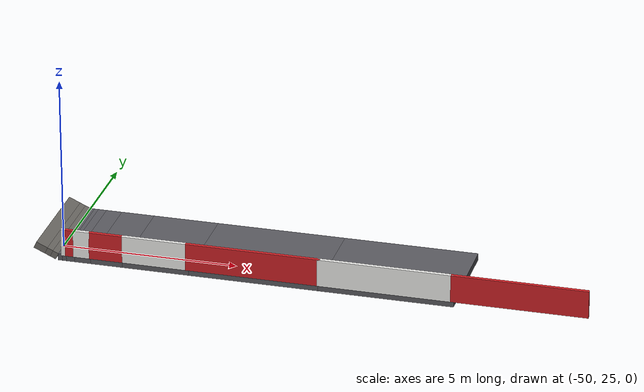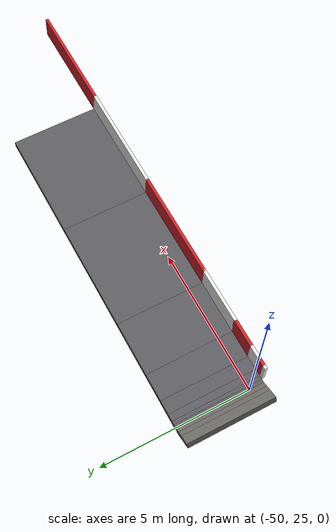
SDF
<sdf version="1.10">
 <world name="ika_parkur">
  <model name="parkur_road">
   <static>true</static>
   <link name="road_0151">
    <pose>-40.625 26 -0.1 0 0 3.141593</pose>
    <collision name="road_0151_col">
     <geometry><box><size>3.825 3 0.2</size></box></geometry>
     <surface>
      <friction><ode><mu>1</mu><mu2>1</mu2></ode></friction>
      <contact><ode><kp>1000000</kp><kd>1</kd></ode></contact>
     </surface>
    </collision>
    <visual name="road_0151_vis">
     <geometry><box><size>3.825 3 0.2</size></box></geometry>
     <material>
      <ambient>0.35 0.35 0.37 1</ambient>
      <diffuse>0.35 0.35 0.37 1</diffuse>
      <specular>0.1 0.1 0.1 1</specular>
     </material>
    </visual>
   </link>
   <link name="road_0152">
    <pose>-44.375 26 -0.1 0 0 3.141593</pose>
    <collision name="road_0152_col">
     <geometry><box><size>3.825 3 0.2</size></box></geometry>
     <surface>
      <friction><ode><mu>1</mu><mu2>1</mu2></ode></friction>
      <contact><ode><kp>1000000</kp><kd>1</kd></ode></contact>
     </surface>
    </collision>
    <visual name="road_0152_vis">
     <geometry><box><size>3.825 3 0.2</size></box></geometry>
     <material>
      <ambient>0.35 0.35 0.37 1</ambient>
      <diffuse>0.35 0.35 0.37 1</diffuse>
      <specular>0.1 0.1 0.1 1</specular>
     </material>
    </visual>
   </link>
   <link name="road_0153">
    <pose>-47.1875 26 -0.1 0 0 3.141593</pose>
    <collision name="road_0153_col">
     <geometry><box><size>1.9125 3 0.2</size></box></geometry>
     <surface>
      <friction><ode><mu>1</mu><mu2>1</mu2></ode></friction>
      <contact><ode><kp>1000000</kp><kd>1</kd></ode></contact>
     </surface>
    </collision>
    <visual name="road_0153_vis">
     <geometry><box><size>1.9125 3 0.2</size></box></geometry>
     <material>
      <ambient>0.35 0.35 0.37 1</ambient>
      <diffuse>0.35 0.35 0.37 1</diffuse>
      <specular>0.1 0.1 0.1 1</specular>
     </material>
    </visual>
   </link>
   <link name="road_0154">
    <pose>-48.59375 26 -0.1 0 0 3.141593</pose>
    <collision name="road_0154_col">
     <geometry><box><size>0.95625 3 0.2</size></box></geometry>
     <surface>
      <friction><ode><mu>1</mu><mu2>1</mu2></ode></friction>
      <contact><ode><kp>1000000</kp><kd>1</kd></ode></contact>
     </surface>
    </collision>
    <visual name="road_0154_vis">
     <geometry><box><size>0.95625 3 0.2</size></box></geometry>
     <material>
      <ambient>0.35 0.35 0.37 1</ambient>
      <diffuse>0.35 0.35 0.37 1</diffuse>
      <specular>0.1 0.1 0.1 1</specular>
     </material>
    </visual>
   </link>
   <link name="road_0155">
    <pose>-49.296875 26 -0.1 0 0 3.141593</pose>
    <collision name="road_0155_col">
     <geometry><box><size>0.478125 3 0.2</size></box></geometry>
     <surface>
      <friction><ode><mu>1</mu><mu2>1</mu2></ode></friction>
      <contact><ode><kp>1000000</kp><kd>1</kd></ode></contact>
     </surface>
    </collision>
    <visual name="road_0155_vis">
     <geometry><box><size>0.478125 3 0.2</size></box></geometry>
     <material>
      <ambient>0.35 0.35 0.37 1</ambient>
      <diffuse>0.35 0.35 0.37 1</diffuse>
      <specular>0.1 0.1 0.1 1</specular>
     </material>
    </visual>
   </link>
   <link name="road_0156">
    <pose>-49.648438 26 -0.1 0 0 3.141593</pose>
    <collision name="road_0156_col">
     <geometry><box><size>0.239063 3 0.2</size></box></geometry>
     <surface>
      <friction><ode><mu>1</mu><mu2>1</mu2></ode></friction>
      <contact><ode><kp>1000000</kp><kd>1</kd></ode></contact>
     </surface>
    </collision>
    <visual name="road_0156_vis">
     <geometry><box><size>0.239063 3 0.2</size></box></geometry>
     <material>
      <ambient>0.35 0.35 0.37 1</ambient>
      <diffuse>0.35 0.35 0.37 1</diffuse>
      <specular>0.1 0.1 0.1 1</specular>
     </material>
    </visual>
   </link>
   <link name="road_0157">
    <pose>-49.824219 26 -0.1 0 0 3.141593</pose>
    <collision name="road_0157_col">
     <geometry><box><size>0.119531 3 0.2</size></box></geometry>
     <surface>
      <friction><ode><mu>1</mu><mu2>1</mu2></ode></friction>
      <contact><ode><kp>1000000</kp><kd>1</kd></ode></contact>
     </surface>
    </collision>
    <visual name="road_0157_vis">
     <geometry><box><size>0.119531 3 0.2</size></box></geometry>
     <material>
      <ambient>0.35 0.35 0.37 1</ambient>
      <diffuse>0.35 0.35 0.37 1</diffuse>
      <specular>0.1 0.1 0.1 1</specular>
     </material>
    </visual>
   </link>
   <link name="road_0158">
    <pose>-49.941406 26 -0.1 0 0 3.141593</pose>
    <collision name="road_0158_col">
     <geometry><box><size>0.119531 3 0.2</size></box></geometry>
     <surface>
      <friction><ode><mu>1</mu><mu2>1</mu2></ode></friction>
      <contact><ode><kp>1000000</kp><kd>1</kd></ode></contact>
     </surface>
    </collision>
    <visual name="road_0158_vis">
     <geometry><box><size>0.119531 3 0.2</size></box></geometry>
     <material>
      <ambient>0.35 0.35 0.37 1</ambient>
      <diffuse>0.35 0.35 0.37 1</diffuse>
      <specular>0.1 0.1 0.1 1</specular>
     </material>
    </visual>
   </link>
   <link name="road_0159">
    <pose>-50.119161 26 -0.056036 0 -0.422854 3.141593</pose>
    <collision name="road_0159_col">
     <geometry><box><size>0.174768 3 0.2</size></box></geometry>
     <surface>
      <friction><ode><mu>1</mu><mu2>1</mu2></ode></friction>
      <contact><ode><kp>1000000</kp><kd>1</kd></ode></contact>
     </surface>
    </collision>
    <visual name="road_0159_vis">
     <geometry><box><size>0.174768 3 0.2</size></box></geometry>
     <material>
      <ambient>0.42 0.41 0.39 1</ambient>
      <diffuse>0.42 0.41 0.39 1</diffuse>
      <specular>0.1 0.1 0.1 1</specular>
     </material>
    </visual>
   </link>
   <link name="road_0160">
    <pose>-50.275411 26 0.014277 0 -0.422854 3.141593</pose>
    <collision name="road_0160_col">
     <geometry><box><size>0.174768 3 0.2</size></box></geometry>
     <surface>
      <friction><ode><mu>1</mu><mu2>1</mu2></ode></friction>
      <contact><ode><kp>1000000</kp><kd>1</kd></ode></contact>
     </surface>
    </collision>
    <visual name="road_0160_vis">
     <geometry><box><size>0.174768 3 0.2</size></box></geometry>
     <material>
      <ambient>0.42 0.41 0.39 1</ambient>
      <diffuse>0.42 0.41 0.39 1</diffuse>
      <specular>0.1 0.1 0.1 1</specular>
     </material>
    </visual>
   </link>
   <link name="road_0161">
    <pose>-50.509786 26 0.119745 0 -0.422854 3.141593</pose>
    <collision name="road_0161_col">
     <geometry><box><size>0.349537 3 0.2</size></box></geometry>
     <surface>
      <friction><ode><mu>1</mu><mu2>1</mu2></ode></friction>
      <contact><ode><kp>1000000</kp><kd>1</kd></ode></contact>
     </surface>
    </collision>
    <visual name="road_0161_vis">
     <geometry><box><size>0.349537 3 0.2</size></box></geometry>
     <material>
      <ambient>0.42 0.41 0.39 1</ambient>
      <diffuse>0.42 0.41 0.39 1</diffuse>
      <specular>0.1 0.1 0.1 1</specular>
     </material>
    </visual>
   </link>
  </model>
  <model name="parkur_barriers">
   <static>true</static>
   <link name="barrier_l_0150">
    <pose>-36.875 24.45 0.4 0 0 3.141593</pose>
    <collision name="barrier_l_0150_col">
     <geometry><box><size>3.825 0.1 0.8</size></box></geometry>
     <surface>
      <friction><ode><mu>0.6</mu><mu2>0.6</mu2></ode></friction>
      <contact><ode><kp>1000000</kp><kd>1</kd></ode></contact>
     </surface>
    </collision>
    <visual name="barrier_l_0150_vis">
     <geometry><box><size>3.825 0.1 0.8</size></box></geometry>
     <material>
      <ambient>0.81 0.13 0.15 1</ambient>
      <diffuse>0.81 0.13 0.15 1</diffuse>
      <specular>0.1 0.1 0.1 1</specular>
     </material>
    </visual>
   </link>
   <link name="barrier_l_0151">
    <pose>-40.625 24.45 0.4 0 0 3.141593</pose>
    <collision name="barrier_l_0151_col">
     <geometry><box><size>3.825 0.1 0.8</size></box></geometry>
     <surface>
      <friction><ode><mu>0.6</mu><mu2>0.6</mu2></ode></friction>
      <contact><ode><kp>1000000</kp><kd>1</kd></ode></contact>
     </surface>
    </collision>
    <visual name="barrier_l_0151_vis">
     <geometry><box><size>3.825 0.1 0.8</size></box></geometry>
     <material>
      <ambient>0.93 0.93 0.92 1</ambient>
      <diffuse>0.93 0.93 0.92 1</diffuse>
      <specular>0.1 0.1 0.1 1</specular>
     </material>
    </visual>
   </link>
   <link name="barrier_l_0152">
    <pose>-44.375 24.45 0.4 0 0 3.141593</pose>
    <collision name="barrier_l_0152_col">
     <geometry><box><size>3.825 0.1 0.8</size></box></geometry>
     <surface>
      <friction><ode><mu>0.6</mu><mu2>0.6</mu2></ode></friction>
      <contact><ode><kp>1000000</kp><kd>1</kd></ode></contact>
     </surface>
    </collision>
    <visual name="barrier_l_0152_vis">
     <geometry><box><size>3.825 0.1 0.8</size></box></geometry>
     <material>
      <ambient>0.81 0.13 0.15 1</ambient>
      <diffuse>0.81 0.13 0.15 1</diffuse>
      <specular>0.1 0.1 0.1 1</specular>
     </material>
    </visual>
   </link>
   <link name="barrier_l_0153">
    <pose>-47.1875 24.45 0.4 0 0 3.141593</pose>
    <collision name="barrier_l_0153_col">
     <geometry><box><size>1.9125 0.1 0.8</size></box></geometry>
     <surface>
      <friction><ode><mu>0.6</mu><mu2>0.6</mu2></ode></friction>
      <contact><ode><kp>1000000</kp><kd>1</kd></ode></contact>
     </surface>
    </collision>
    <visual name="barrier_l_0153_vis">
     <geometry><box><size>1.9125 0.1 0.8</size></box></geometry>
     <material>
      <ambient>0.93 0.93 0.92 1</ambient>
      <diffuse>0.93 0.93 0.92 1</diffuse>
      <specular>0.1 0.1 0.1 1</specular>
     </material>
    </visual>
   </link>
   <link name="barrier_l_0154">
    <pose>-48.59375 24.45 0.4 0 0 3.141593</pose>
    <collision name="barrier_l_0154_col">
     <geometry><box><size>0.95625 0.1 0.8</size></box></geometry>
     <surface>
      <friction><ode><mu>0.6</mu><mu2>0.6</mu2></ode></friction>
      <contact><ode><kp>1000000</kp><kd>1</kd></ode></contact>
     </surface>
    </collision>
    <visual name="barrier_l_0154_vis">
     <geometry><box><size>0.95625 0.1 0.8</size></box></geometry>
     <material>
      <ambient>0.81 0.13 0.15 1</ambient>
      <diffuse>0.81 0.13 0.15 1</diffuse>
      <specular>0.1 0.1 0.1 1</specular>
     </material>
    </visual>
   </link>
   <link name="barrier_l_0155">
    <pose>-49.296875 24.45 0.4 0 0 3.141593</pose>
    <collision name="barrier_l_0155_col">
     <geometry><box><size>0.478125 0.1 0.8</size></box></geometry>
     <surface>
      <friction><ode><mu>0.6</mu><mu2>0.6</mu2></ode></friction>
      <contact><ode><kp>1000000</kp><kd>1</kd></ode></contact>
     </surface>
    </collision>
    <visual name="barrier_l_0155_vis">
     <geometry><box><size>0.478125 0.1 0.8</size></box></geometry>
     <material>
      <ambient>0.93 0.93 0.92 1</ambient>
      <diffuse>0.93 0.93 0.92 1</diffuse>
      <specular>0.1 0.1 0.1 1</specular>
     </material>
    </visual>
   </link>
   <link name="barrier_l_0156">
    <pose>-49.648438 24.45 0.4 0 0 3.141593</pose>
    <collision name="barrier_l_0156_col">
     <geometry><box><size>0.239063 0.1 0.8</size></box></geometry>
     <surface>
      <friction><ode><mu>0.6</mu><mu2>0.6</mu2></ode></friction>
      <contact><ode><kp>1000000</kp><kd>1</kd></ode></contact>
     </surface>
    </collision>
    <visual name="barrier_l_0156_vis">
     <geometry><box><size>0.239063 0.1 0.8</size></box></geometry>
     <material>
      <ambient>0.81 0.13 0.15 1</ambient>
      <diffuse>0.81 0.13 0.15 1</diffuse>
      <specular>0.1 0.1 0.1 1</specular>
     </material>
    </visual>
   </link>
   <link name="barrier_l_0157">
    <pose>-49.824219 24.45 0.4 0 0 3.141593</pose>
    <collision name="barrier_l_0157_col">
     <geometry><box><size>0.119531 0.1 0.8</size></box></geometry>
     <surface>
      <friction><ode><mu>0.6</mu><mu2>0.6</mu2></ode></friction>
      <contact><ode><kp>1000000</kp><kd>1</kd></ode></contact>
     </surface>
    </collision>
    <visual name="barrier_l_0157_vis">
     <geometry><box><size>0.119531 0.1 0.8</size></box></geometry>
     <material>
      <ambient>0.93 0.93 0.92 1</ambient>
      <diffuse>0.93 0.93 0.92 1</diffuse>
      <specular>0.1 0.1 0.1 1</specular>
     </material>
    </visual>
   </link>
  </model>
 </world>
</sdf>
